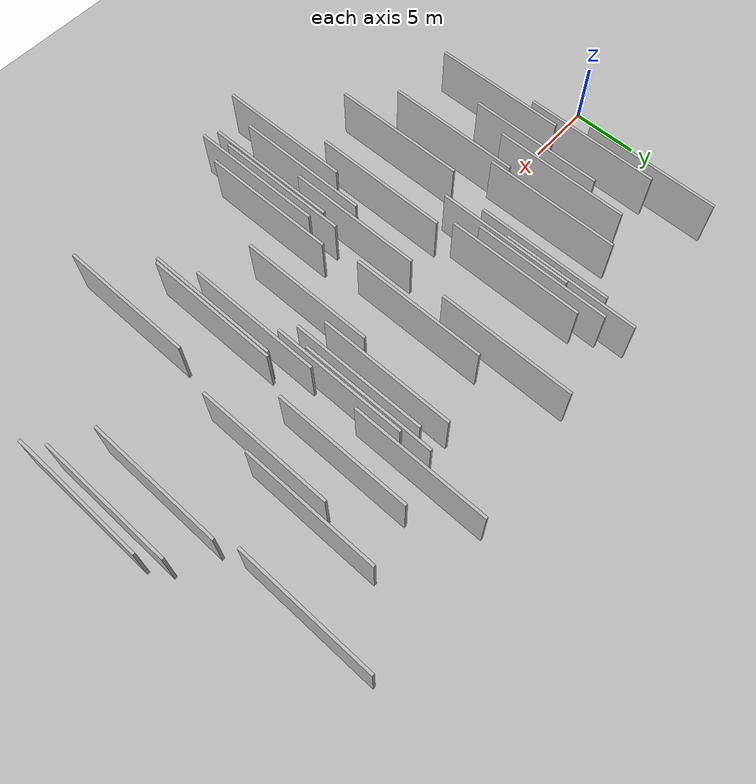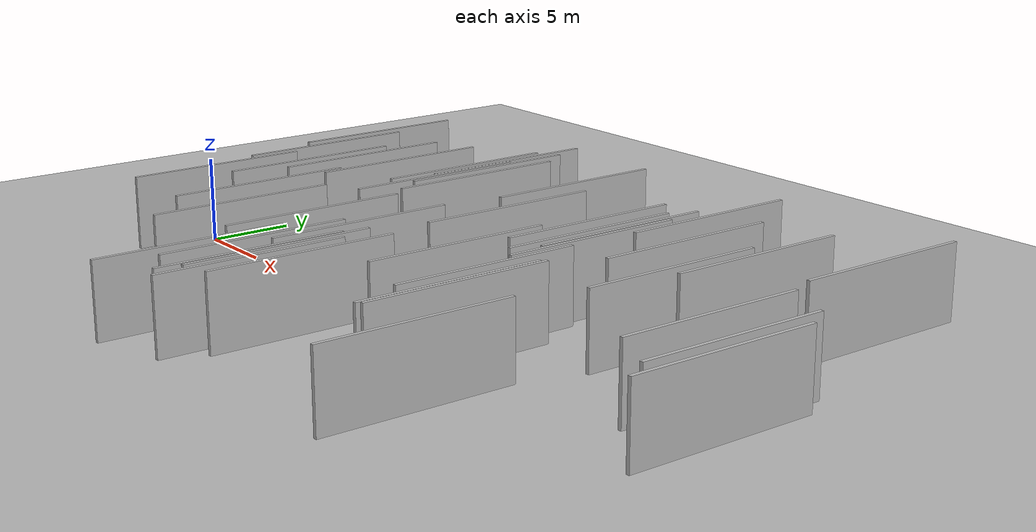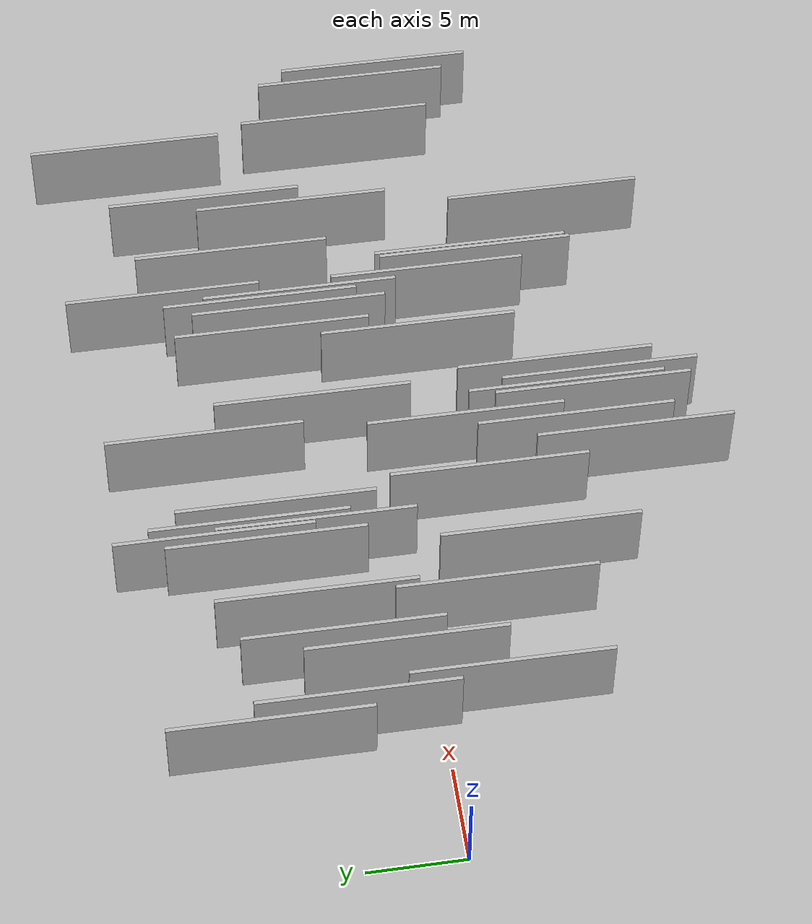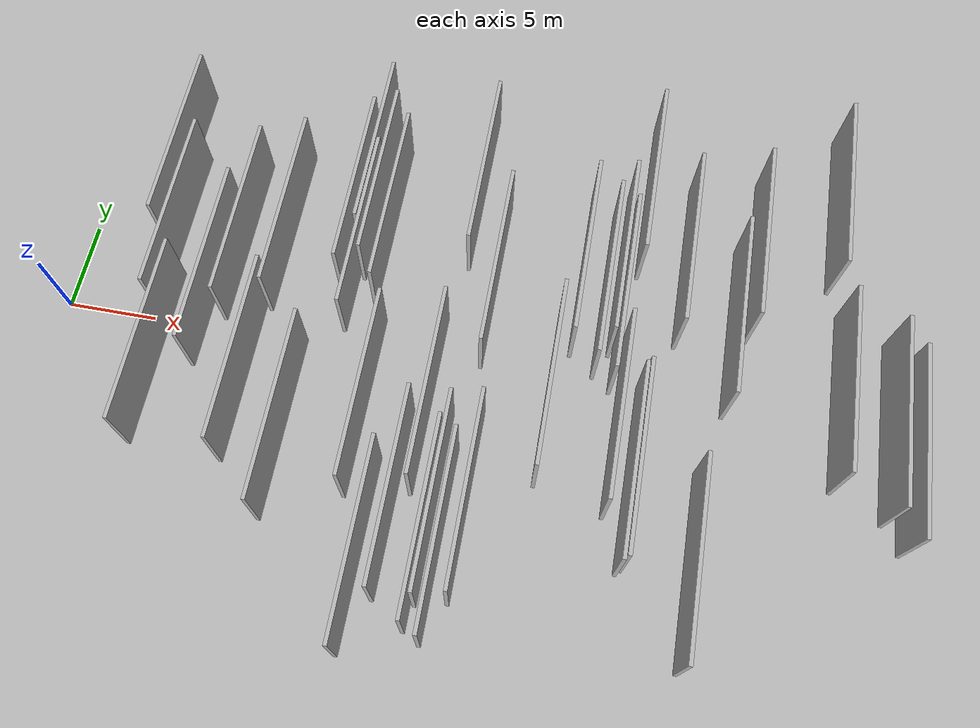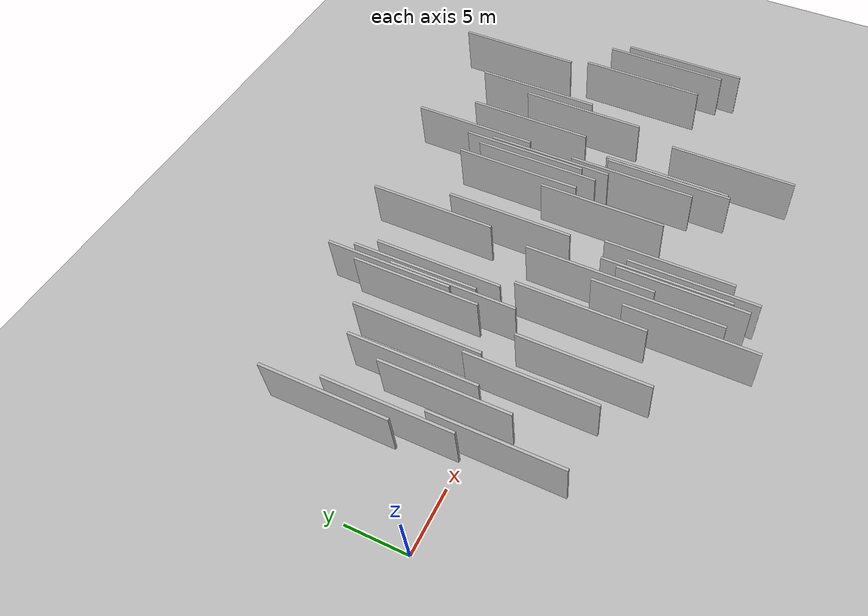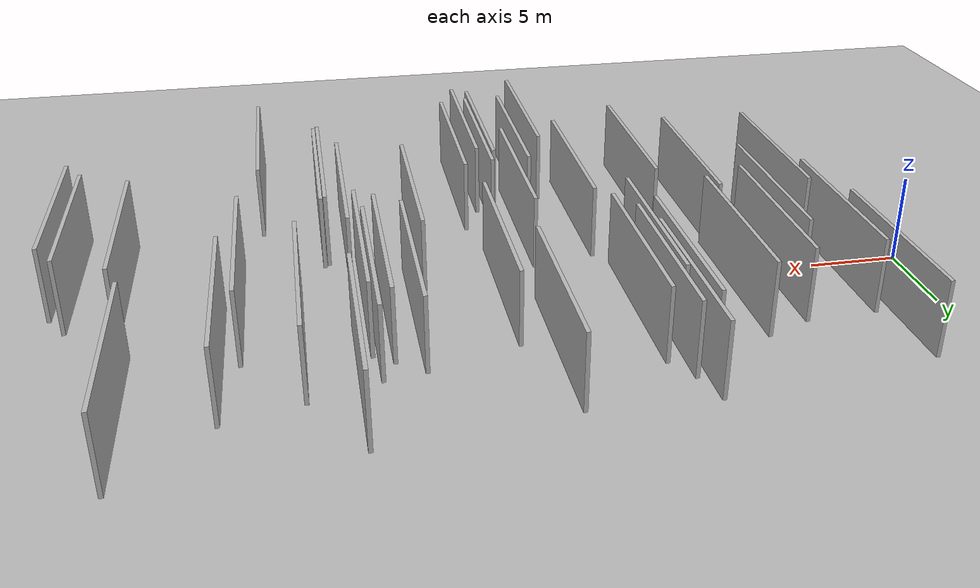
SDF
<?xml version="1.0" encoding="utf-8"?>

<sdf version="1.6">

   <world name="default">

      <gui fullscreen="0">

         <camera name="user_camera">

            <pose>-15 0 4.57585 0 0 0</pose>

            <view_controller>orbit</view_controller>

         </camera>

      </gui>

      <scene>

         <sky>

           <clouds>

             <speed>12</speed>

           </clouds>

         </sky>

         <ambient>0.4 0.4 0.4 1</ambient>

         <background>0.7 0.7 0.7 1</background>

         <shadows>1</shadows>

      </scene>

      <gravity>0 0 -9.8066</gravity>

      <magnetic_field>6e-06 2.3e-05 -4.2e-05</magnetic_field>

      <physics default="0" name="default_physics" type="ode">

         <ode>

            <solver>

               <type>quick</type>

               <iters>10</iters>

               <sor>1.0</sor>

               <use_dynamic_moi_rescaling>0</use_dynamic_moi_rescaling>

            </solver>

            <constraints>

               <cfm>0</cfm>

               <erp>0.2</erp>

               <contact_max_correcting_vel>100</contact_max_correcting_vel>

               <contact_surface_layer>0.001</contact_surface_layer>

            </constraints>

         </ode>

         <max_step_size>0.004</max_step_size>

         <real_time_factor>1</real_time_factor>

         <real_time_update_rate>250</real_time_update_rate>

      </physics>

      <light name="sun" type="directional">

         <cast_shadows>1</cast_shadows>

         <pose>0 0 10 0 0 0</pose>

         <diffuse>0.8 0.8 0.8 1</diffuse>

         <specular>0.2 0.2 0.2 1</specular>

         <attenuation>

            <range>1000</range>

            <constant>0.9</constant>

            <linear>0.01</linear>

            <quadratic>0.001</quadratic>

         </attenuation>

         <direction>-0.5 0.1 -0.9</direction>

      </light>

      <include>

         <name>ground_plane_1</name>

         <uri>model://HANNAS_ground_plane</uri>

         <pose>0 0 0  0 0 0</pose>

      </include>

      <include>

         <name>ground_plane_2</name>

         <uri>model://HANNAS_ground_plane</uri>

         <pose>100 0 0  0 0 0</pose>

      </include>

      <model name="HANNAS_wall_1">

         <static>1</static>

         <pose frame="">36.7389 3.7299 2.5 0.000000 0.000000 1.570796</pose>

         <link name="link">

            <pose frame="">0 0 2.00 0 0 0</pose>

            <collision name="collision">

               <geometry>

                  <box>

                     <size>10.00 0.2 4.00</size>

                  </box>

               </geometry>

               <max_contacts>10</max_contacts>

               <surface>

                  <contact>

                     <ode/>

                  </contact>

                  <bounce/>

                  <friction>

                     <torsional>

                        <ode/>

                     </torsional>

                     <ode/>

                  </friction>

               </surface>

            </collision>

            <visual name="visual">

               <cast_shadows>0</cast_shadows>

               <geometry>

                  <box>

                     <size>10.00 0.2 4.00</size>

                  </box>

               </geometry>

               <material>

                  <script>

                     <uri>model://HANNAS_wall/materials/scripts</uri>

                     <uri>model://HANNAS_wall/materials/textures</uri>

                     <name>vrc/HANNAS_wall</name>

                  </script>

               </material>

            </visual>

            <self_collide>0</self_collide>

            <enable_wind>0</enable_wind>

            <kinematic>0</kinematic>

         </link>

      </model>

      <model name="HANNAS_wall_2">

         <static>1</static>

         <pose frame="">18.3693 -3.8636 2.5 0.000000 0.000000 1.570796</pose>

         <link name="link">

            <pose frame="">0 0 2.00 0 0 0</pose>

            <collision name="collision">

               <geometry>

                  <box>

                     <size>10.00 0.2 4.00</size>

                  </box>

               </geometry>

               <max_contacts>10</max_contacts>

               <surface>

                  <contact>

                     <ode/>

                  </contact>

                  <bounce/>

                  <friction>

                     <torsional>

                        <ode/>

                     </torsional>

                     <ode/>

                  </friction>

               </surface>

            </collision>

            <visual name="visual">

               <cast_shadows>0</cast_shadows>

               <geometry>

                  <box>

                     <size>10.00 0.2 4.00</size>

                  </box>

               </geometry>

               <material>

                  <script>

                     <uri>model://HANNAS_wall/materials/scripts</uri>

                     <uri>model://HANNAS_wall/materials/textures</uri>

                     <name>vrc/HANNAS_wall</name>

                  </script>

               </material>

            </visual>

            <self_collide>0</self_collide>

            <enable_wind>0</enable_wind>

            <kinematic>0</kinematic>

         </link>

      </model>

      <model name="HANNAS_wall_3">

         <static>1</static>

         <pose frame="">5.2661 8.7087 2.5 0.000000 0.000000 1.570796</pose>

         <link name="link">

            <pose frame="">0 0 2.00 0 0 0</pose>

            <collision name="collision">

               <geometry>

                  <box>

                     <size>10.00 0.2 4.00</size>

                  </box>

               </geometry>

               <max_contacts>10</max_contacts>

               <surface>

                  <contact>

                     <ode/>

                  </contact>

                  <bounce/>

                  <friction>

                     <torsional>

                        <ode/>

                     </torsional>

                     <ode/>

                  </friction>

               </surface>

            </collision>

            <visual name="visual">

               <cast_shadows>0</cast_shadows>

               <geometry>

                  <box>

                     <size>10.00 0.2 4.00</size>

                  </box>

               </geometry>

               <material>

                  <script>

                     <uri>model://HANNAS_wall/materials/scripts</uri>

                     <uri>model://HANNAS_wall/materials/textures</uri>

                     <name>vrc/HANNAS_wall</name>

                  </script>

               </material>

            </visual>

            <self_collide>0</self_collide>

            <enable_wind>0</enable_wind>

            <kinematic>0</kinematic>

         </link>

      </model>

      <model name="HANNAS_wall_4">

         <static>1</static>

         <pose frame="">6.1756 4.4305 2.5 0.000000 0.000000 1.570796</pose>

         <link name="link">

            <pose frame="">0 0 2.00 0 0 0</pose>

            <collision name="collision">

               <geometry>

                  <box>

                     <size>10.00 0.2 4.00</size>

                  </box>

               </geometry>

               <max_contacts>10</max_contacts>

               <surface>

                  <contact>

                     <ode/>

                  </contact>

                  <bounce/>

                  <friction>

                     <torsional>

                        <ode/>

                     </torsional>

                     <ode/>

                  </friction>

               </surface>

            </collision>

            <visual name="visual">

               <cast_shadows>0</cast_shadows>

               <geometry>

                  <box>

                     <size>10.00 0.2 4.00</size>

                  </box>

               </geometry>

               <material>

                  <script>

                     <uri>model://HANNAS_wall/materials/scripts</uri>

                     <uri>model://HANNAS_wall/materials/textures</uri>

                     <name>vrc/HANNAS_wall</name>

                  </script>

               </material>

            </visual>

            <self_collide>0</self_collide>

            <enable_wind>0</enable_wind>

            <kinematic>0</kinematic>

         </link>

      </model>

      <model name="HANNAS_wall_5">

         <static>1</static>

         <pose frame="">27.6642 -1.6571 2.5 0.000000 0.000000 1.570796</pose>

         <link name="link">

            <pose frame="">0 0 2.00 0 0 0</pose>

            <collision name="collision">

               <geometry>

                  <box>

                     <size>10.00 0.2 4.00</size>

                  </box>

               </geometry>

               <max_contacts>10</max_contacts>

               <surface>

                  <contact>

                     <ode/>

                  </contact>

                  <bounce/>

                  <friction>

                     <torsional>

                        <ode/>

                     </torsional>

                     <ode/>

                  </friction>

               </surface>

            </collision>

            <visual name="visual">

               <cast_shadows>0</cast_shadows>

               <geometry>

                  <box>

                     <size>10.00 0.2 4.00</size>

                  </box>

               </geometry>

               <material>

                  <script>

                     <uri>model://HANNAS_wall/materials/scripts</uri>

                     <uri>model://HANNAS_wall/materials/textures</uri>

                     <name>vrc/HANNAS_wall</name>

                  </script>

               </material>

            </visual>

            <self_collide>0</self_collide>

            <enable_wind>0</enable_wind>

            <kinematic>0</kinematic>

         </link>

      </model>

      <model name="HANNAS_wall_6">

         <static>1</static>

         <pose frame="">23.9062 4.2846 2.5 0.000000 0.000000 1.570796</pose>

         <link name="link">

            <pose frame="">0 0 2.00 0 0 0</pose>

            <collision name="collision">

               <geometry>

                  <box>

                     <size>10.00 0.2 4.00</size>

                  </box>

               </geometry>

               <max_contacts>10</max_contacts>

               <surface>

                  <contact>

                     <ode/>

                  </contact>

                  <bounce/>

                  <friction>

                     <torsional>

                        <ode/>

                     </torsional>

                     <ode/>

                  </friction>

               </surface>

            </collision>

            <visual name="visual">

               <cast_shadows>0</cast_shadows>

               <geometry>

                  <box>

                     <size>10.00 0.2 4.00</size>

                  </box>

               </geometry>

               <material>

                  <script>

                     <uri>model://HANNAS_wall/materials/scripts</uri>

                     <uri>model://HANNAS_wall/materials/textures</uri>

                     <name>vrc/HANNAS_wall</name>

                  </script>

               </material>

            </visual>

            <self_collide>0</self_collide>

            <enable_wind>0</enable_wind>

            <kinematic>0</kinematic>

         </link>

      </model>

      <model name="HANNAS_wall_7">

         <static>1</static>

         <pose frame="">11.7381 -3.1613 2.5 0.000000 0.000000 1.570796</pose>

         <link name="link">

            <pose frame="">0 0 2.00 0 0 0</pose>

            <collision name="collision">

               <geometry>

                  <box>

                     <size>10.00 0.2 4.00</size>

                  </box>

               </geometry>

               <max_contacts>10</max_contacts>

               <surface>

                  <contact>

                     <ode/>

                  </contact>

                  <bounce/>

                  <friction>

                     <torsional>

                        <ode/>

                     </torsional>

                     <ode/>

                  </friction>

               </surface>

            </collision>

            <visual name="visual">

               <cast_shadows>0</cast_shadows>

               <geometry>

                  <box>

                     <size>10.00 0.2 4.00</size>

                  </box>

               </geometry>

               <material>

                  <script>

                     <uri>model://HANNAS_wall/materials/scripts</uri>

                     <uri>model://HANNAS_wall/materials/textures</uri>

                     <name>vrc/HANNAS_wall</name>

                  </script>

               </material>

            </visual>

            <self_collide>0</self_collide>

            <enable_wind>0</enable_wind>

            <kinematic>0</kinematic>

         </link>

      </model>

      <model name="HANNAS_wall_8">

         <static>1</static>

         <pose frame="">35.6754 -9.4800 2.5 0.000000 0.000000 1.570796</pose>

         <link name="link">

            <pose frame="">0 0 2.00 0 0 0</pose>

            <collision name="collision">

               <geometry>

                  <box>

                     <size>10.00 0.2 4.00</size>

                  </box>

               </geometry>

               <max_contacts>10</max_contacts>

               <surface>

                  <contact>

                     <ode/>

                  </contact>

                  <bounce/>

                  <friction>

                     <torsional>

                        <ode/>

                     </torsional>

                     <ode/>

                  </friction>

               </surface>

            </collision>

            <visual name="visual">

               <cast_shadows>0</cast_shadows>

               <geometry>

                  <box>

                     <size>10.00 0.2 4.00</size>

                  </box>

               </geometry>

               <material>

                  <script>

                     <uri>model://HANNAS_wall/materials/scripts</uri>

                     <uri>model://HANNAS_wall/materials/textures</uri>

                     <name>vrc/HANNAS_wall</name>

                  </script>

               </material>

            </visual>

            <self_collide>0</self_collide>

            <enable_wind>0</enable_wind>

            <kinematic>0</kinematic>

         </link>

      </model>

      <model name="HANNAS_wall_9">

         <static>1</static>

         <pose frame="">30.4827 6.1334 2.5 0.000000 0.000000 1.570796</pose>

         <link name="link">

            <pose frame="">0 0 2.00 0 0 0</pose>

            <collision name="collision">

               <geometry>

                  <box>

                     <size>10.00 0.2 4.00</size>

                  </box>

               </geometry>

               <max_contacts>10</max_contacts>

               <surface>

                  <contact>

                     <ode/>

                  </contact>

                  <bounce/>

                  <friction>

                     <torsional>

                        <ode/>

                     </torsional>

                     <ode/>

                  </friction>

               </surface>

            </collision>

            <visual name="visual">

               <cast_shadows>0</cast_shadows>

               <geometry>

                  <box>

                     <size>10.00 0.2 4.00</size>

                  </box>

               </geometry>

               <material>

                  <script>

                     <uri>model://HANNAS_wall/materials/scripts</uri>

                     <uri>model://HANNAS_wall/materials/textures</uri>

                     <name>vrc/HANNAS_wall</name>

                  </script>

               </material>

            </visual>

            <self_collide>0</self_collide>

            <enable_wind>0</enable_wind>

            <kinematic>0</kinematic>

         </link>

      </model>

      <model name="HANNAS_wall_10">

         <static>1</static>

         <pose frame="">30.7868 4.0420 2.5 0.000000 0.000000 1.570796</pose>

         <link name="link">

            <pose frame="">0 0 2.00 0 0 0</pose>

            <collision name="collision">

               <geometry>

                  <box>

                     <size>10.00 0.2 4.00</size>

                  </box>

               </geometry>

               <max_contacts>10</max_contacts>

               <surface>

                  <contact>

                     <ode/>

                  </contact>

                  <bounce/>

                  <friction>

                     <torsional>

                        <ode/>

                     </torsional>

                     <ode/>

                  </friction>

               </surface>

            </collision>

            <visual name="visual">

               <cast_shadows>0</cast_shadows>

               <geometry>

                  <box>

                     <size>10.00 0.2 4.00</size>

                  </box>

               </geometry>

               <material>

                  <script>

                     <uri>model://HANNAS_wall/materials/scripts</uri>

                     <uri>model://HANNAS_wall/materials/textures</uri>

                     <name>vrc/HANNAS_wall</name>

                  </script>

               </material>

            </visual>

            <self_collide>0</self_collide>

            <enable_wind>0</enable_wind>

            <kinematic>0</kinematic>

         </link>

      </model>

      <model name="HANNAS_wall_11">

         <static>1</static>

         <pose frame="">28.4683 5.7676 2.5 0.000000 0.000000 1.570796</pose>

         <link name="link">

            <pose frame="">0 0 2.00 0 0 0</pose>

            <collision name="collision">

               <geometry>

                  <box>

                     <size>10.00 0.2 4.00</size>

                  </box>

               </geometry>

               <max_contacts>10</max_contacts>

               <surface>

                  <contact>

                     <ode/>

                  </contact>

                  <bounce/>

                  <friction>

                     <torsional>

                        <ode/>

                     </torsional>

                     <ode/>

                  </friction>

               </surface>

            </collision>

            <visual name="visual">

               <cast_shadows>0</cast_shadows>

               <geometry>

                  <box>

                     <size>10.00 0.2 4.00</size>

                  </box>

               </geometry>

               <material>

                  <script>

                     <uri>model://HANNAS_wall/materials/scripts</uri>

                     <uri>model://HANNAS_wall/materials/textures</uri>

                     <name>vrc/HANNAS_wall</name>

                  </script>

               </material>

            </visual>

            <self_collide>0</self_collide>

            <enable_wind>0</enable_wind>

            <kinematic>0</kinematic>

         </link>

      </model>

      <model name="HANNAS_wall_12">

         <static>1</static>

         <pose frame="">22.9555 -8.5541 2.5 0.000000 0.000000 1.570796</pose>

         <link name="link">

            <pose frame="">0 0 2.00 0 0 0</pose>

            <collision name="collision">

               <geometry>

                  <box>

                     <size>10.00 0.2 4.00</size>

                  </box>

               </geometry>

               <max_contacts>10</max_contacts>

               <surface>

                  <contact>

                     <ode/>

                  </contact>

                  <bounce/>

                  <friction>

                     <torsional>

                        <ode/>

                     </torsional>

                     <ode/>

                  </friction>

               </surface>

            </collision>

            <visual name="visual">

               <cast_shadows>0</cast_shadows>

               <geometry>

                  <box>

                     <size>10.00 0.2 4.00</size>

                  </box>

               </geometry>

               <material>

                  <script>

                     <uri>model://HANNAS_wall/materials/scripts</uri>

                     <uri>model://HANNAS_wall/materials/textures</uri>

                     <name>vrc/HANNAS_wall</name>

                  </script>

               </material>

            </visual>

            <self_collide>0</self_collide>

            <enable_wind>0</enable_wind>

            <kinematic>0</kinematic>

         </link>

      </model>

      <model name="HANNAS_wall_13">

         <static>1</static>

         <pose frame="">16.7048 8.3484 2.5 0.000000 0.000000 1.570796</pose>

         <link name="link">

            <pose frame="">0 0 2.00 0 0 0</pose>

            <collision name="collision">

               <geometry>

                  <box>

                     <size>10.00 0.2 4.00</size>

                  </box>

               </geometry>

               <max_contacts>10</max_contacts>

               <surface>

                  <contact>

                     <ode/>

                  </contact>

                  <bounce/>

                  <friction>

                     <torsional>

                        <ode/>

                     </torsional>

                     <ode/>

                  </friction>

               </surface>

            </collision>

            <visual name="visual">

               <cast_shadows>0</cast_shadows>

               <geometry>

                  <box>

                     <size>10.00 0.2 4.00</size>

                  </box>

               </geometry>

               <material>

                  <script>

                     <uri>model://HANNAS_wall/materials/scripts</uri>

                     <uri>model://HANNAS_wall/materials/textures</uri>

                     <name>vrc/HANNAS_wall</name>

                  </script>

               </material>

            </visual>

            <self_collide>0</self_collide>

            <enable_wind>0</enable_wind>

            <kinematic>0</kinematic>

         </link>

      </model>

      <model name="HANNAS_wall_14">

         <static>1</static>

         <pose frame="">31.2862 -2.6650 2.5 0.000000 0.000000 1.570796</pose>

         <link name="link">

            <pose frame="">0 0 2.00 0 0 0</pose>

            <collision name="collision">

               <geometry>

                  <box>

                     <size>10.00 0.2 4.00</size>

                  </box>

               </geometry>

               <max_contacts>10</max_contacts>

               <surface>

                  <contact>

                     <ode/>

                  </contact>

                  <bounce/>

                  <friction>

                     <torsional>

                        <ode/>

                     </torsional>

                     <ode/>

                  </friction>

               </surface>

            </collision>

            <visual name="visual">

               <cast_shadows>0</cast_shadows>

               <geometry>

                  <box>

                     <size>10.00 0.2 4.00</size>

                  </box>

               </geometry>

               <material>

                  <script>

                     <uri>model://HANNAS_wall/materials/scripts</uri>

                     <uri>model://HANNAS_wall/materials/textures</uri>

                     <name>vrc/HANNAS_wall</name>

                  </script>

               </material>

            </visual>

            <self_collide>0</self_collide>

            <enable_wind>0</enable_wind>

            <kinematic>0</kinematic>

         </link>

      </model>

      <model name="HANNAS_wall_15">

         <static>1</static>

         <pose frame="">42.4316 0.6625 2.5 0.000000 0.000000 1.570796</pose>

         <link name="link">

            <pose frame="">0 0 2.00 0 0 0</pose>

            <collision name="collision">

               <geometry>

                  <box>

                     <size>10.00 0.2 4.00</size>

                  </box>

               </geometry>

               <max_contacts>10</max_contacts>

               <surface>

                  <contact>

                     <ode/>

                  </contact>

                  <bounce/>

                  <friction>

                     <torsional>

                        <ode/>

                     </torsional>

                     <ode/>

                  </friction>

               </surface>

            </collision>

            <visual name="visual">

               <cast_shadows>0</cast_shadows>

               <geometry>

                  <box>

                     <size>10.00 0.2 4.00</size>

                  </box>

               </geometry>

               <material>

                  <script>

                     <uri>model://HANNAS_wall/materials/scripts</uri>

                     <uri>model://HANNAS_wall/materials/textures</uri>

                     <name>vrc/HANNAS_wall</name>

                  </script>

               </material>

            </visual>

            <self_collide>0</self_collide>

            <enable_wind>0</enable_wind>

            <kinematic>0</kinematic>

         </link>

      </model>

      <model name="HANNAS_wall_16">

         <static>1</static>

         <pose frame="">9.8329 4.6323 2.5 0.000000 0.000000 1.570796</pose>

         <link name="link">

            <pose frame="">0 0 2.00 0 0 0</pose>

            <collision name="collision">

               <geometry>

                  <box>

                     <size>10.00 0.2 4.00</size>

                  </box>

               </geometry>

               <max_contacts>10</max_contacts>

               <surface>

                  <contact>

                     <ode/>

                  </contact>

                  <bounce/>

                  <friction>

                     <torsional>

                        <ode/>

                     </torsional>

                     <ode/>

                  </friction>

               </surface>

            </collision>

            <visual name="visual">

               <cast_shadows>0</cast_shadows>

               <geometry>

                  <box>

                     <size>10.00 0.2 4.00</size>

                  </box>

               </geometry>

               <material>

                  <script>

                     <uri>model://HANNAS_wall/materials/scripts</uri>

                     <uri>model://HANNAS_wall/materials/textures</uri>

                     <name>vrc/HANNAS_wall</name>

                  </script>

               </material>

            </visual>

            <self_collide>0</self_collide>

            <enable_wind>0</enable_wind>

            <kinematic>0</kinematic>

         </link>

      </model>

      <model name="HANNAS_wall_17">

         <static>1</static>

         <pose frame="">22.6636 -9.8650 2.5 0.000000 0.000000 1.570796</pose>

         <link name="link">

            <pose frame="">0 0 2.00 0 0 0</pose>

            <collision name="collision">

               <geometry>

                  <box>

                     <size>10.00 0.2 4.00</size>

                  </box>

               </geometry>

               <max_contacts>10</max_contacts>

               <surface>

                  <contact>

                     <ode/>

                  </contact>

                  <bounce/>

                  <friction>

                     <torsional>

                        <ode/>

                     </torsional>

                     <ode/>

                  </friction>

               </surface>

            </collision>

            <visual name="visual">

               <cast_shadows>0</cast_shadows>

               <geometry>

                  <box>

                     <size>10.00 0.2 4.00</size>

                  </box>

               </geometry>

               <material>

                  <script>

                     <uri>model://HANNAS_wall/materials/scripts</uri>

                     <uri>model://HANNAS_wall/materials/textures</uri>

                     <name>vrc/HANNAS_wall</name>

                  </script>

               </material>

            </visual>

            <self_collide>0</self_collide>

            <enable_wind>0</enable_wind>

            <kinematic>0</kinematic>

         </link>

      </model>

      <model name="HANNAS_wall_18">

         <static>1</static>

         <pose frame="">8.8318 1.7116 2.5 0.000000 0.000000 1.570796</pose>

         <link name="link">

            <pose frame="">0 0 2.00 0 0 0</pose>

            <collision name="collision">

               <geometry>

                  <box>

                     <size>10.00 0.2 4.00</size>

                  </box>

               </geometry>

               <max_contacts>10</max_contacts>

               <surface>

                  <contact>

                     <ode/>

                  </contact>

                  <bounce/>

                  <friction>

                     <torsional>

                        <ode/>

                     </torsional>

                     <ode/>

                  </friction>

               </surface>

            </collision>

            <visual name="visual">

               <cast_shadows>0</cast_shadows>

               <geometry>

                  <box>

                     <size>10.00 0.2 4.00</size>

                  </box>

               </geometry>

               <material>

                  <script>

                     <uri>model://HANNAS_wall/materials/scripts</uri>

                     <uri>model://HANNAS_wall/materials/textures</uri>

                     <name>vrc/HANNAS_wall</name>

                  </script>

               </material>

            </visual>

            <self_collide>0</self_collide>

            <enable_wind>0</enable_wind>

            <kinematic>0</kinematic>

         </link>

      </model>

      <model name="HANNAS_wall_19">

         <static>1</static>

         <pose frame="">29.8121 4.7317 2.5 0.000000 0.000000 1.570796</pose>

         <link name="link">

            <pose frame="">0 0 2.00 0 0 0</pose>

            <collision name="collision">

               <geometry>

                  <box>

                     <size>10.00 0.2 4.00</size>

                  </box>

               </geometry>

               <max_contacts>10</max_contacts>

               <surface>

                  <contact>

                     <ode/>

                  </contact>

                  <bounce/>

                  <friction>

                     <torsional>

                        <ode/>

                     </torsional>

                     <ode/>

                  </friction>

               </surface>

            </collision>

            <visual name="visual">

               <cast_shadows>0</cast_shadows>

               <geometry>

                  <box>

                     <size>10.00 0.2 4.00</size>

                  </box>

               </geometry>

               <material>

                  <script>

                     <uri>model://HANNAS_wall/materials/scripts</uri>

                     <uri>model://HANNAS_wall/materials/textures</uri>

                     <name>vrc/HANNAS_wall</name>

                  </script>

               </material>

            </visual>

            <self_collide>0</self_collide>

            <enable_wind>0</enable_wind>

            <kinematic>0</kinematic>

         </link>

      </model>

      <model name="HANNAS_wall_20">

         <static>1</static>

         <pose frame="">20.8764 -8.6704 2.5 0.000000 0.000000 1.570796</pose>

         <link name="link">

            <pose frame="">0 0 2.00 0 0 0</pose>

            <collision name="collision">

               <geometry>

                  <box>

                     <size>10.00 0.2 4.00</size>

                  </box>

               </geometry>

               <max_contacts>10</max_contacts>

               <surface>

                  <contact>

                     <ode/>

                  </contact>

                  <bounce/>

                  <friction>

                     <torsional>

                        <ode/>

                     </torsional>

                     <ode/>

                  </friction>

               </surface>

            </collision>

            <visual name="visual">

               <cast_shadows>0</cast_shadows>

               <geometry>

                  <box>

                     <size>10.00 0.2 4.00</size>

                  </box>

               </geometry>

               <material>

                  <script>

                     <uri>model://HANNAS_wall/materials/scripts</uri>

                     <uri>model://HANNAS_wall/materials/textures</uri>

                     <name>vrc/HANNAS_wall</name>

                  </script>

               </material>

            </visual>

            <self_collide>0</self_collide>

            <enable_wind>0</enable_wind>

            <kinematic>0</kinematic>

         </link>

      </model>

      <model name="HANNAS_wall_21">

         <static>1</static>

         <pose frame="">16.3341 5.0965 2.5 0.000000 0.000000 1.570796</pose>

         <link name="link">

            <pose frame="">0 0 2.00 0 0 0</pose>

            <collision name="collision">

               <geometry>

                  <box>

                     <size>10.00 0.2 4.00</size>

                  </box>

               </geometry>

               <max_contacts>10</max_contacts>

               <surface>

                  <contact>

                     <ode/>

                  </contact>

                  <bounce/>

                  <friction>

                     <torsional>

                        <ode/>

                     </torsional>

                     <ode/>

                  </friction>

               </surface>

            </collision>

            <visual name="visual">

               <cast_shadows>0</cast_shadows>

               <geometry>

                  <box>

                     <size>10.00 0.2 4.00</size>

                  </box>

               </geometry>

               <material>

                  <script>

                     <uri>model://HANNAS_wall/materials/scripts</uri>

                     <uri>model://HANNAS_wall/materials/textures</uri>

                     <name>vrc/HANNAS_wall</name>

                  </script>

               </material>

            </visual>

            <self_collide>0</self_collide>

            <enable_wind>0</enable_wind>

            <kinematic>0</kinematic>

         </link>

      </model>

      <model name="HANNAS_wall_22">

         <static>1</static>

         <pose frame="">12.1354 5.6113 2.5 0.000000 0.000000 1.570796</pose>

         <link name="link">

            <pose frame="">0 0 2.00 0 0 0</pose>

            <collision name="collision">

               <geometry>

                  <box>

                     <size>10.00 0.2 4.00</size>

                  </box>

               </geometry>

               <max_contacts>10</max_contacts>

               <surface>

                  <contact>

                     <ode/>

                  </contact>

                  <bounce/>

                  <friction>

                     <torsional>

                        <ode/>

                     </torsional>

                     <ode/>

                  </friction>

               </surface>

            </collision>

            <visual name="visual">

               <cast_shadows>0</cast_shadows>

               <geometry>

                  <box>

                     <size>10.00 0.2 4.00</size>

                  </box>

               </geometry>

               <material>

                  <script>

                     <uri>model://HANNAS_wall/materials/scripts</uri>

                     <uri>model://HANNAS_wall/materials/textures</uri>

                     <name>vrc/HANNAS_wall</name>

                  </script>

               </material>

            </visual>

            <self_collide>0</self_collide>

            <enable_wind>0</enable_wind>

            <kinematic>0</kinematic>

         </link>

      </model>

      <model name="HANNAS_wall_23">

         <static>1</static>

         <pose frame="">19.7417 -11.4935 2.5 0.000000 0.000000 1.570796</pose>

         <link name="link">

            <pose frame="">0 0 2.00 0 0 0</pose>

            <collision name="collision">

               <geometry>

                  <box>

                     <size>10.00 0.2 4.00</size>

                  </box>

               </geometry>

               <max_contacts>10</max_contacts>

               <surface>

                  <contact>

                     <ode/>

                  </contact>

                  <bounce/>

                  <friction>

                     <torsional>

                        <ode/>

                     </torsional>

                     <ode/>

                  </friction>

               </surface>

            </collision>

            <visual name="visual">

               <cast_shadows>0</cast_shadows>

               <geometry>

                  <box>

                     <size>10.00 0.2 4.00</size>

                  </box>

               </geometry>

               <material>

                  <script>

                     <uri>model://HANNAS_wall/materials/scripts</uri>

                     <uri>model://HANNAS_wall/materials/textures</uri>

                     <name>vrc/HANNAS_wall</name>

                  </script>

               </material>

            </visual>

            <self_collide>0</self_collide>

            <enable_wind>0</enable_wind>

            <kinematic>0</kinematic>

         </link>

      </model>

      <model name="HANNAS_wall_24">

         <static>1</static>

         <pose frame="">33.8924 7.2388 2.5 0.000000 0.000000 1.570796</pose>

         <link name="link">

            <pose frame="">0 0 2.00 0 0 0</pose>

            <collision name="collision">

               <geometry>

                  <box>

                     <size>10.00 0.2 4.00</size>

                  </box>

               </geometry>

               <max_contacts>10</max_contacts>

               <surface>

                  <contact>

                     <ode/>

                  </contact>

                  <bounce/>

                  <friction>

                     <torsional>

                        <ode/>

                     </torsional>

                     <ode/>

                  </friction>

               </surface>

            </collision>

            <visual name="visual">

               <cast_shadows>0</cast_shadows>

               <geometry>

                  <box>

                     <size>10.00 0.2 4.00</size>

                  </box>

               </geometry>

               <material>

                  <script>

                     <uri>model://HANNAS_wall/materials/scripts</uri>

                     <uri>model://HANNAS_wall/materials/textures</uri>

                     <name>vrc/HANNAS_wall</name>

                  </script>

               </material>

            </visual>

            <self_collide>0</self_collide>

            <enable_wind>0</enable_wind>

            <kinematic>0</kinematic>

         </link>

      </model>

      <model name="HANNAS_wall_25">

         <static>1</static>

         <pose frame="">32.2773 -5.3523 2.5 0.000000 0.000000 1.570796</pose>

         <link name="link">

            <pose frame="">0 0 2.00 0 0 0</pose>

            <collision name="collision">

               <geometry>

                  <box>

                     <size>10.00 0.2 4.00</size>

                  </box>

               </geometry>

               <max_contacts>10</max_contacts>

               <surface>

                  <contact>

                     <ode/>

                  </contact>

                  <bounce/>

                  <friction>

                     <torsional>

                        <ode/>

                     </torsional>

                     <ode/>

                  </friction>

               </surface>

            </collision>

            <visual name="visual">

               <cast_shadows>0</cast_shadows>

               <geometry>

                  <box>

                     <size>10.00 0.2 4.00</size>

                  </box>

               </geometry>

               <material>

                  <script>

                     <uri>model://HANNAS_wall/materials/scripts</uri>

                     <uri>model://HANNAS_wall/materials/textures</uri>

                     <name>vrc/HANNAS_wall</name>

                  </script>

               </material>

            </visual>

            <self_collide>0</self_collide>

            <enable_wind>0</enable_wind>

            <kinematic>0</kinematic>

         </link>

      </model>

      <model name="HANNAS_wall_26">

         <static>1</static>

         <pose frame="">15.5549 7.6438 2.5 0.000000 0.000000 1.570796</pose>

         <link name="link">

            <pose frame="">0 0 2.00 0 0 0</pose>

            <collision name="collision">

               <geometry>

                  <box>

                     <size>10.00 0.2 4.00</size>

                  </box>

               </geometry>

               <max_contacts>10</max_contacts>

               <surface>

                  <contact>

                     <ode/>

                  </contact>

                  <bounce/>

                  <friction>

                     <torsional>

                        <ode/>

                     </torsional>

                     <ode/>

                  </friction>

               </surface>

            </collision>

            <visual name="visual">

               <cast_shadows>0</cast_shadows>

               <geometry>

                  <box>

                     <size>10.00 0.2 4.00</size>

                  </box>

               </geometry>

               <material>

                  <script>

                     <uri>model://HANNAS_wall/materials/scripts</uri>

                     <uri>model://HANNAS_wall/materials/textures</uri>

                     <name>vrc/HANNAS_wall</name>

                  </script>

               </material>

            </visual>

            <self_collide>0</self_collide>

            <enable_wind>0</enable_wind>

            <kinematic>0</kinematic>

         </link>

      </model>

      <model name="HANNAS_wall_27">

         <static>1</static>

         <pose frame="">45.9000 -1.9488 2.5 0.000000 0.000000 1.570796</pose>

         <link name="link">

            <pose frame="">0 0 2.00 0 0 0</pose>

            <collision name="collision">

               <geometry>

                  <box>

                     <size>10.00 0.2 4.00</size>

                  </box>

               </geometry>

               <max_contacts>10</max_contacts>

               <surface>

                  <contact>

                     <ode/>

                  </contact>

                  <bounce/>

                  <friction>

                     <torsional>

                        <ode/>

                     </torsional>

                     <ode/>

                  </friction>

               </surface>

            </collision>

            <visual name="visual">

               <cast_shadows>0</cast_shadows>

               <geometry>

                  <box>

                     <size>10.00 0.2 4.00</size>

                  </box>

               </geometry>

               <material>

                  <script>

                     <uri>model://HANNAS_wall/materials/scripts</uri>

                     <uri>model://HANNAS_wall/materials/textures</uri>

                     <name>vrc/HANNAS_wall</name>

                  </script>

               </material>

            </visual>

            <self_collide>0</self_collide>

            <enable_wind>0</enable_wind>

            <kinematic>0</kinematic>

         </link>

      </model>

      <model name="HANNAS_wall_28">

         <static>1</static>

         <pose frame="">14.4341 -5.7608 2.5 0.000000 0.000000 1.570796</pose>

         <link name="link">

            <pose frame="">0 0 2.00 0 0 0</pose>

            <collision name="collision">

               <geometry>

                  <box>

                     <size>10.00 0.2 4.00</size>

                  </box>

               </geometry>

               <max_contacts>10</max_contacts>

               <surface>

                  <contact>

                     <ode/>

                  </contact>

                  <bounce/>

                  <friction>

                     <torsional>

                        <ode/>

                     </torsional>

                     <ode/>

                  </friction>

               </surface>

            </collision>

            <visual name="visual">

               <cast_shadows>0</cast_shadows>

               <geometry>

                  <box>

                     <size>10.00 0.2 4.00</size>

                  </box>

               </geometry>

               <material>

                  <script>

                     <uri>model://HANNAS_wall/materials/scripts</uri>

                     <uri>model://HANNAS_wall/materials/textures</uri>

                     <name>vrc/HANNAS_wall</name>

                  </script>

               </material>

            </visual>

            <self_collide>0</self_collide>

            <enable_wind>0</enable_wind>

            <kinematic>0</kinematic>

         </link>

      </model>

      <model name="HANNAS_wall_29">

         <static>1</static>

         <pose frame="">17.6249 6.9259 2.5 0.000000 0.000000 1.570796</pose>

         <link name="link">

            <pose frame="">0 0 2.00 0 0 0</pose>

            <collision name="collision">

               <geometry>

                  <box>

                     <size>10.00 0.2 4.00</size>

                  </box>

               </geometry>

               <max_contacts>10</max_contacts>

               <surface>

                  <contact>

                     <ode/>

                  </contact>

                  <bounce/>

                  <friction>

                     <torsional>

                        <ode/>

                     </torsional>

                     <ode/>

                  </friction>

               </surface>

            </collision>

            <visual name="visual">

               <cast_shadows>0</cast_shadows>

               <geometry>

                  <box>

                     <size>10.00 0.2 4.00</size>

                  </box>

               </geometry>

               <material>

                  <script>

                     <uri>model://HANNAS_wall/materials/scripts</uri>

                     <uri>model://HANNAS_wall/materials/textures</uri>

                     <name>vrc/HANNAS_wall</name>

                  </script>

               </material>

            </visual>

            <self_collide>0</self_collide>

            <enable_wind>0</enable_wind>

            <kinematic>0</kinematic>

         </link>

      </model>

      <model name="HANNAS_wall_30">

         <static>1</static>

         <pose frame="">41.8371 11.9993 2.5 0.000000 0.000000 1.570796</pose>

         <link name="link">

            <pose frame="">0 0 2.00 0 0 0</pose>

            <collision name="collision">

               <geometry>

                  <box>

                     <size>10.00 0.2 4.00</size>

                  </box>

               </geometry>

               <max_contacts>10</max_contacts>

               <surface>

                  <contact>

                     <ode/>

                  </contact>

                  <bounce/>

                  <friction>

                     <torsional>

                        <ode/>

                     </torsional>

                     <ode/>

                  </friction>

               </surface>

            </collision>

            <visual name="visual">

               <cast_shadows>0</cast_shadows>

               <geometry>

                  <box>

                     <size>10.00 0.2 4.00</size>

                  </box>

               </geometry>

               <material>

                  <script>

                     <uri>model://HANNAS_wall/materials/scripts</uri>

                     <uri>model://HANNAS_wall/materials/textures</uri>

                     <name>vrc/HANNAS_wall</name>

                  </script>

               </material>

            </visual>

            <self_collide>0</self_collide>

            <enable_wind>0</enable_wind>

            <kinematic>0</kinematic>

         </link>

      </model>

      <model name="HANNAS_wall_31">

         <static>1</static>

         <pose frame="">45.0200 -0.5764 2.5 0.000000 0.000000 1.570796</pose>

         <link name="link">

            <pose frame="">0 0 2.00 0 0 0</pose>

            <collision name="collision">

               <geometry>

                  <box>

                     <size>10.00 0.2 4.00</size>

                  </box>

               </geometry>

               <max_contacts>10</max_contacts>

               <surface>

                  <contact>

                     <ode/>

                  </contact>

                  <bounce/>

                  <friction>

                     <torsional>

                        <ode/>

                     </torsional>

                     <ode/>

                  </friction>

               </surface>

            </collision>

            <visual name="visual">

               <cast_shadows>0</cast_shadows>

               <geometry>

                  <box>

                     <size>10.00 0.2 4.00</size>

                  </box>

               </geometry>

               <material>

                  <script>

                     <uri>model://HANNAS_wall/materials/scripts</uri>

                     <uri>model://HANNAS_wall/materials/textures</uri>

                     <name>vrc/HANNAS_wall</name>

                  </script>

               </material>

            </visual>

            <self_collide>0</self_collide>

            <enable_wind>0</enable_wind>

            <kinematic>0</kinematic>

         </link>

      </model>

      <model name="HANNAS_wall_32">

         <static>1</static>

         <pose frame="">23.5426 -10.3534 2.5 0.000000 0.000000 1.570796</pose>

         <link name="link">

            <pose frame="">0 0 2.00 0 0 0</pose>

            <collision name="collision">

               <geometry>

                  <box>

                     <size>10.00 0.2 4.00</size>

                  </box>

               </geometry>

               <max_contacts>10</max_contacts>

               <surface>

                  <contact>

                     <ode/>

                  </contact>

                  <bounce/>

                  <friction>

                     <torsional>

                        <ode/>

                     </torsional>

                     <ode/>

                  </friction>

               </surface>

            </collision>

            <visual name="visual">

               <cast_shadows>0</cast_shadows>

               <geometry>

                  <box>

                     <size>10.00 0.2 4.00</size>

                  </box>

               </geometry>

               <material>

                  <script>

                     <uri>model://HANNAS_wall/materials/scripts</uri>

                     <uri>model://HANNAS_wall/materials/textures</uri>

                     <name>vrc/HANNAS_wall</name>

                  </script>

               </material>

            </visual>

            <self_collide>0</self_collide>

            <enable_wind>0</enable_wind>

            <kinematic>0</kinematic>

         </link>

      </model>

      <model name="HANNAS_wall_33">

         <static>1</static>

         <pose frame="">16.1035 10.1543 2.5 0.000000 0.000000 1.570796</pose>

         <link name="link">

            <pose frame="">0 0 2.00 0 0 0</pose>

            <collision name="collision">

               <geometry>

                  <box>

                     <size>10.00 0.2 4.00</size>

                  </box>

               </geometry>

               <max_contacts>10</max_contacts>

               <surface>

                  <contact>

                     <ode/>

                  </contact>

                  <bounce/>

                  <friction>

                     <torsional>

                        <ode/>

                     </torsional>

                     <ode/>

                  </friction>

               </surface>

            </collision>

            <visual name="visual">

               <cast_shadows>0</cast_shadows>

               <geometry>

                  <box>

                     <size>10.00 0.2 4.00</size>

                  </box>

               </geometry>

               <material>

                  <script>

                     <uri>model://HANNAS_wall/materials/scripts</uri>

                     <uri>model://HANNAS_wall/materials/textures</uri>

                     <name>vrc/HANNAS_wall</name>

                  </script>

               </material>

            </visual>

            <self_collide>0</self_collide>

            <enable_wind>0</enable_wind>

            <kinematic>0</kinematic>

         </link>

      </model>

      <model name="HANNAS_wall_34">

         <static>1</static>

         <pose frame="">32.5054 -5.1268 2.5 0.000000 0.000000 1.570796</pose>

         <link name="link">

            <pose frame="">0 0 2.00 0 0 0</pose>

            <collision name="collision">

               <geometry>

                  <box>

                     <size>10.00 0.2 4.00</size>

                  </box>

               </geometry>

               <max_contacts>10</max_contacts>

               <surface>

                  <contact>

                     <ode/>

                  </contact>

                  <bounce/>

                  <friction>

                     <torsional>

                        <ode/>

                     </torsional>

                     <ode/>

                  </friction>

               </surface>

            </collision>

            <visual name="visual">

               <cast_shadows>0</cast_shadows>

               <geometry>

                  <box>

                     <size>10.00 0.2 4.00</size>

                  </box>

               </geometry>

               <material>

                  <script>

                     <uri>model://HANNAS_wall/materials/scripts</uri>

                     <uri>model://HANNAS_wall/materials/textures</uri>

                     <name>vrc/HANNAS_wall</name>

                  </script>

               </material>

            </visual>

            <self_collide>0</self_collide>

            <enable_wind>0</enable_wind>

            <kinematic>0</kinematic>

         </link>

      </model>

      <model name="HANNAS_wall_35">

         <static>1</static>

         <pose frame="">21.6579 -3.1822 2.5 0.000000 0.000000 1.570796</pose>

         <link name="link">

            <pose frame="">0 0 2.00 0 0 0</pose>

            <collision name="collision">

               <geometry>

                  <box>

                     <size>10.00 0.2 4.00</size>

                  </box>

               </geometry>

               <max_contacts>10</max_contacts>

               <surface>

                  <contact>

                     <ode/>

                  </contact>

                  <bounce/>

                  <friction>

                     <torsional>

                        <ode/>

                     </torsional>

                     <ode/>

                  </friction>

               </surface>

            </collision>

            <visual name="visual">

               <cast_shadows>0</cast_shadows>

               <geometry>

                  <box>

                     <size>10.00 0.2 4.00</size>

                  </box>

               </geometry>

               <material>

                  <script>

                     <uri>model://HANNAS_wall/materials/scripts</uri>

                     <uri>model://HANNAS_wall/materials/textures</uri>

                     <name>vrc/HANNAS_wall</name>

                  </script>

               </material>

            </visual>

            <self_collide>0</self_collide>

            <enable_wind>0</enable_wind>

            <kinematic>0</kinematic>

         </link>

      </model>

      <model name="HANNAS_wall_36">

         <static>1</static>

         <pose frame="">24.5112 -8.2173 2.5 0.000000 0.000000 1.570796</pose>

         <link name="link">

            <pose frame="">0 0 2.00 0 0 0</pose>

            <collision name="collision">

               <geometry>

                  <box>

                     <size>10.00 0.2 4.00</size>

                  </box>

               </geometry>

               <max_contacts>10</max_contacts>

               <surface>

                  <contact>

                     <ode/>

                  </contact>

                  <bounce/>

                  <friction>

                     <torsional>

                        <ode/>

                     </torsional>

                     <ode/>

                  </friction>

               </surface>

            </collision>

            <visual name="visual">

               <cast_shadows>0</cast_shadows>

               <geometry>

                  <box>

                     <size>10.00 0.2 4.00</size>

                  </box>

               </geometry>

               <material>

                  <script>

                     <uri>model://HANNAS_wall/materials/scripts</uri>

                     <uri>model://HANNAS_wall/materials/textures</uri>

                     <name>vrc/HANNAS_wall</name>

                  </script>

               </material>

            </visual>

            <self_collide>0</self_collide>

            <enable_wind>0</enable_wind>

            <kinematic>0</kinematic>

         </link>

      </model>

      <model name="HANNAS_wall_37">

         <static>1</static>

         <pose frame="">22.2458 9.9538 2.5 0.000000 0.000000 1.570796</pose>

         <link name="link">

            <pose frame="">0 0 2.00 0 0 0</pose>

            <collision name="collision">

               <geometry>

                  <box>

                     <size>10.00 0.2 4.00</size>

                  </box>

               </geometry>

               <max_contacts>10</max_contacts>

               <surface>

                  <contact>

                     <ode/>

                  </contact>

                  <bounce/>

                  <friction>

                     <torsional>

                        <ode/>

                     </torsional>

                     <ode/>

                  </friction>

               </surface>

            </collision>

            <visual name="visual">

               <cast_shadows>0</cast_shadows>

               <geometry>

                  <box>

                     <size>10.00 0.2 4.00</size>

                  </box>

               </geometry>

               <material>

                  <script>

                     <uri>model://HANNAS_wall/materials/scripts</uri>

                     <uri>model://HANNAS_wall/materials/textures</uri>

                     <name>vrc/HANNAS_wall</name>

                  </script>

               </material>

            </visual>

            <self_collide>0</self_collide>

            <enable_wind>0</enable_wind>

            <kinematic>0</kinematic>

         </link>

      </model>

      <model name="HANNAS_wall_38">

         <static>1</static>

         <pose frame="">6.8171 -3.0690 2.5 0.000000 0.000000 1.570796</pose>

         <link name="link">

            <pose frame="">0 0 2.00 0 0 0</pose>

            <collision name="collision">

               <geometry>

                  <box>

                     <size>10.00 0.2 4.00</size>

                  </box>

               </geometry>

               <max_contacts>10</max_contacts>

               <surface>

                  <contact>

                     <ode/>

                  </contact>

                  <bounce/>

                  <friction>

                     <torsional>

                        <ode/>

                     </torsional>

                     <ode/>

                  </friction>

               </surface>

            </collision>

            <visual name="visual">

               <cast_shadows>0</cast_shadows>

               <geometry>

                  <box>

                     <size>10.00 0.2 4.00</size>

                  </box>

               </geometry>

               <material>

                  <script>

                     <uri>model://HANNAS_wall/materials/scripts</uri>

                     <uri>model://HANNAS_wall/materials/textures</uri>

                     <name>vrc/HANNAS_wall</name>

                  </script>

               </material>

            </visual>

            <self_collide>0</self_collide>

            <enable_wind>0</enable_wind>

            <kinematic>0</kinematic>

         </link>

      </model>

      <model name="HANNAS_wall_39">

         <static>1</static>

         <pose frame="">37.6172 8.2332 2.5 0.000000 0.000000 1.570796</pose>

         <link name="link">

            <pose frame="">0 0 2.00 0 0 0</pose>

            <collision name="collision">

               <geometry>

                  <box>

                     <size>10.00 0.2 4.00</size>

                  </box>

               </geometry>

               <max_contacts>10</max_contacts>

               <surface>

                  <contact>

                     <ode/>

                  </contact>

                  <bounce/>

                  <friction>

                     <torsional>

                        <ode/>

                     </torsional>

                     <ode/>

                  </friction>

               </surface>

            </collision>

            <visual name="visual">

               <cast_shadows>0</cast_shadows>

               <geometry>

                  <box>

                     <size>10.00 0.2 4.00</size>

                  </box>

               </geometry>

               <material>

                  <script>

                     <uri>model://HANNAS_wall/materials/scripts</uri>

                     <uri>model://HANNAS_wall/materials/textures</uri>

                     <name>vrc/HANNAS_wall</name>

                  </script>

               </material>

            </visual>

            <self_collide>0</self_collide>

            <enable_wind>0</enable_wind>

            <kinematic>0</kinematic>

         </link>

      </model>

      <model name="HANNAS_wall_40">

         <static>1</static>

         <pose frame="">31.4673 11.0649 2.5 0.000000 0.000000 1.570796</pose>

         <link name="link">

            <pose frame="">0 0 2.00 0 0 0</pose>

            <collision name="collision">

               <geometry>

                  <box>

                     <size>10.00 0.2 4.00</size>

                  </box>

               </geometry>

               <max_contacts>10</max_contacts>

               <surface>

                  <contact>

                     <ode/>

                  </contact>

                  <bounce/>

                  <friction>

                     <torsional>

                        <ode/>

                     </torsional>

                     <ode/>

                  </friction>

               </surface>

            </collision>

            <visual name="visual">

               <cast_shadows>0</cast_shadows>

               <geometry>

                  <box>

                     <size>10.00 0.2 4.00</size>

                  </box>

               </geometry>

               <material>

                  <script>

                     <uri>model://HANNAS_wall/materials/scripts</uri>

                     <uri>model://HANNAS_wall/materials/textures</uri>

                     <name>vrc/HANNAS_wall</name>

                  </script>

               </material>

            </visual>

            <self_collide>0</self_collide>

            <enable_wind>0</enable_wind>

            <kinematic>0</kinematic>

         </link>

      </model>

   </world>

</sdf>
